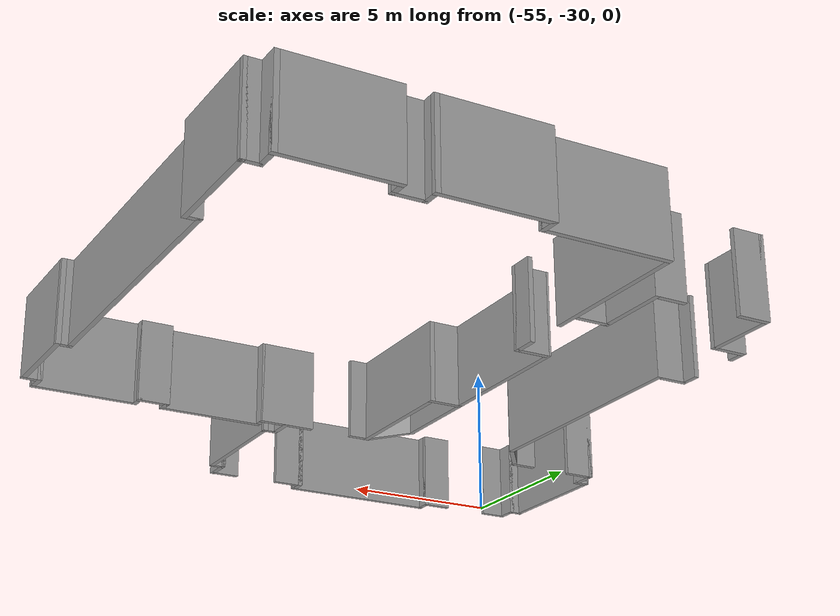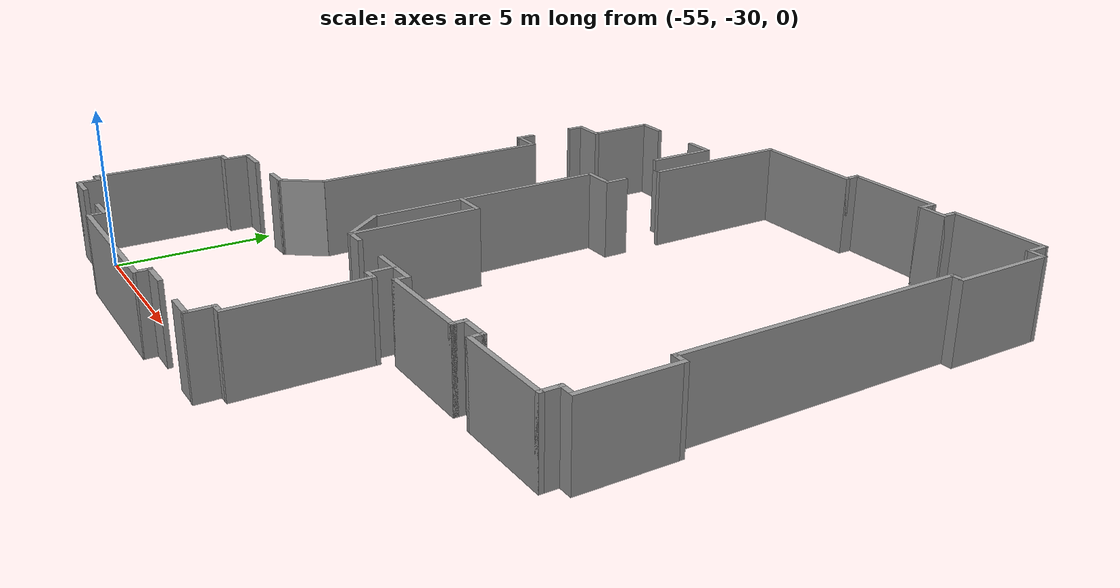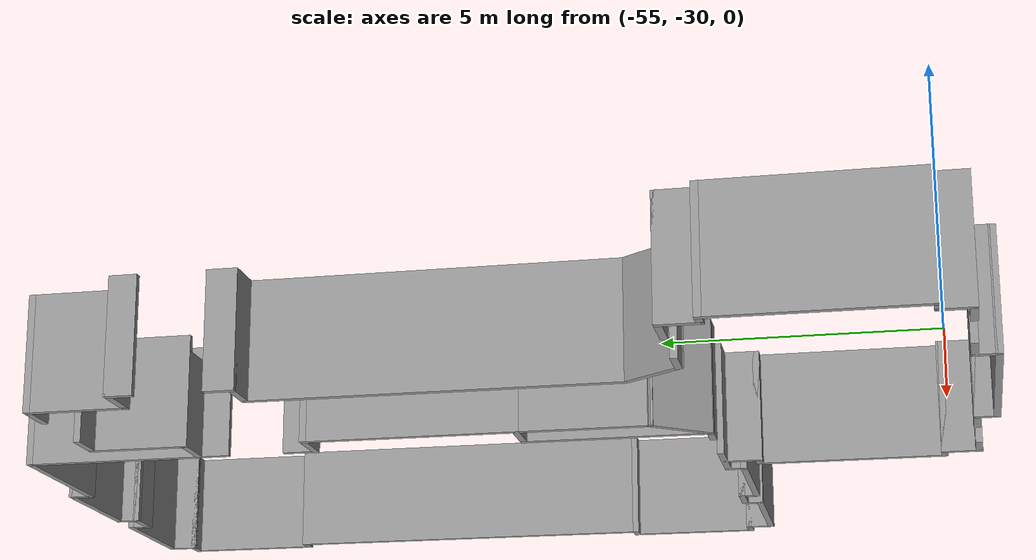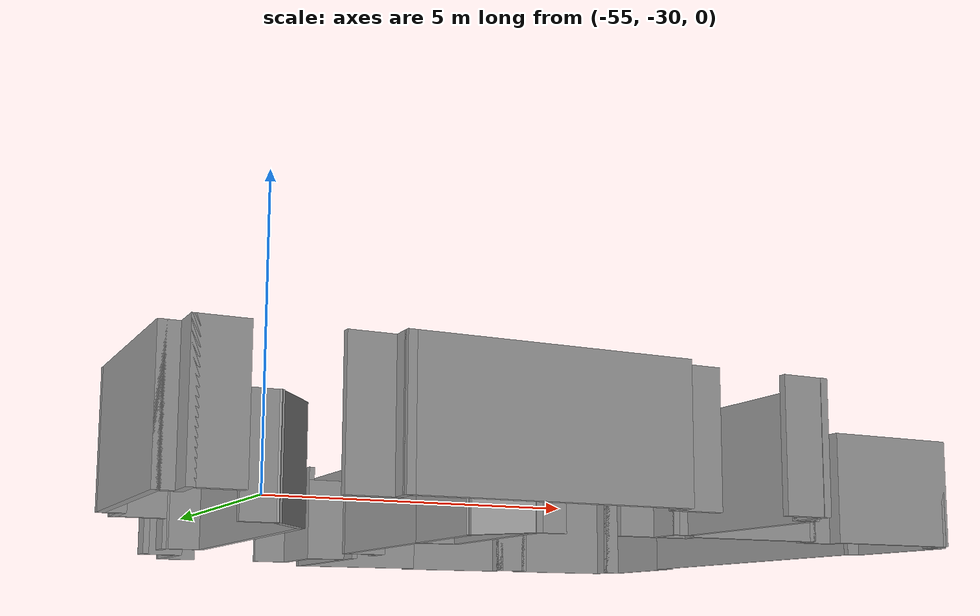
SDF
<?xml version='1.0'?>
<sdf version='1.7'>
  <model name='TD1'>
    <pose>-28.3145 -15.5307 0 0 -0 0</pose>
    <link name='Wall_109'>
      <collision name='Wall_109_Collision'>
        <geometry>
          <box>
            <size>3 0.15 2.5</size>
          </box>
        </geometry>
        <pose>0 0 1.25 0 -0 0</pose>
      </collision>
      <visual name='Wall_109_Visual'>
        <pose>0 0 1.25 0 -0 0</pose>
        <geometry>
          <box>
            <size>3 0.15 2.5</size>
          </box>
        </geometry>
        <material>
          <script>
            <uri>file://media/materials/scripts/gazebo.material</uri>
            <name>Gazebo/Grey</name>
          </script>
          <ambient>1 1 1 1</ambient>
        </material>
        <meta>
          <layer>0</layer>
        </meta>
      </visual>
      <pose>-20.3998 -6.95471 0 0 -0 -1.5708</pose>
    </link>
    <link name='Wall_11'>
      <collision name='Wall_11_Collision'>
        <geometry>
          <box>
            <size>1.75 0.15 2.5</size>
          </box>
        </geometry>
        <pose>0 0 1.25 0 -0 0</pose>
      </collision>
      <visual name='Wall_11_Visual'>
        <pose>0 0 1.25 0 -0 0</pose>
        <geometry>
          <box>
            <size>1.75 0.15 2.5</size>
          </box>
        </geometry>
        <material>
          <script>
            <uri>file://media/materials/scripts/gazebo.material</uri>
            <name>Gazebo/Grey</name>
          </script>
          <ambient>1 1 1 1</ambient>
        </material>
        <meta>
          <layer>0</layer>
        </meta>
      </visual>
      <pose>-16.6495 -9.53936 0 0 -0 -4.8e-05</pose>
    </link>
    <link name='Wall_112'>
      <collision name='Wall_112_Collision'>
        <geometry>
          <box>
            <size>1.57435 0.15 2.5</size>
          </box>
        </geometry>
        <pose>0 0 1.25 0 -0 0</pose>
      </collision>
      <visual name='Wall_112_Visual'>
        <pose>0 0 1.25 0 -0 0</pose>
        <geometry>
          <box>
            <size>1.57435 0.15 2.5</size>
          </box>
        </geometry>
        <material>
          <script>
            <uri>file://media/materials/scripts/gazebo.material</uri>
            <name>Gazebo/Grey</name>
          </script>
          <ambient>1 1 1 1</ambient>
        </material>
        <meta>
          <layer>0</layer>
        </meta>
      </visual>
      <pose>-19.9567 -8.93727 0 0 -0 -0.899319</pose>
    </link>
    <link name='Wall_115'>
      <collision name='Wall_115_Collision'>
        <geometry>
          <box>
            <size>0.812514 0.15 2.5</size>
          </box>
        </geometry>
        <pose>0 0 1.25 0 -0 0</pose>
      </collision>
      <visual name='Wall_115_Visual'>
        <pose>0 0 1.25 0 -0 0</pose>
        <geometry>
          <box>
            <size>0.812514 0.15 2.5</size>
          </box>
        </geometry>
        <material>
          <script>
            <uri>file://media/materials/scripts/gazebo.material</uri>
            <name>Gazebo/Grey</name>
          </script>
          <ambient>1 1 1 1</ambient>
        </material>
        <meta>
          <layer>0</layer>
        </meta>
      </visual>
      <pose>-25.2583 -9.55294 0 0 -0 0.008254</pose>
    </link>
    <link name='Wall_119'>
      <collision name='Wall_119_Collision'>
        <geometry>
          <box>
            <size>7.75 0.15 2.5</size>
          </box>
        </geometry>
        <pose>0 0 1.25 0 -0 0</pose>
      </collision>
      <visual name='Wall_119_Visual'>
        <pose>0 0 1.25 0 -0 0</pose>
        <geometry>
          <box>
            <size>7.75 0.15 2.5</size>
          </box>
        </geometry>
        <material>
          <script>
            <uri>file://media/materials/scripts/gazebo.material</uri>
            <name>Gazebo/Grey</name>
          </script>
          <ambient>1 1 1 1</ambient>
        </material>
        <meta>
          <layer>0</layer>
        </meta>
      </visual>
      <pose>-24.0875 -4.57705 0 0 -0 -1.5708</pose>
    </link>
    <link name='Wall_12'>
      <collision name='Wall_12_Collision'>
        <geometry>
          <box>
            <size>0.5 0.15 2.5</size>
          </box>
        </geometry>
        <pose>0 0 1.25 0 -0 0</pose>
      </collision>
      <visual name='Wall_12_Visual'>
        <pose>0 0 1.25 0 -0 0</pose>
        <geometry>
          <box>
            <size>0.5 0.15 2.5</size>
          </box>
        </geometry>
        <material>
          <script>
            <uri>file://media/materials/scripts/gazebo.material</uri>
            <name>Gazebo/Grey</name>
          </script>
          <ambient>1 1 1 1</ambient>
        </material>
        <meta>
          <layer>0</layer>
        </meta>
      </visual>
      <pose>-15.8494 -9.7144 0 0 -0 -1.5708</pose>
    </link>
    <link name='Wall_124'>
      <collision name='Wall_124_Collision'>
        <geometry>
          <box>
            <size>1.50767 0.15 2.5</size>
          </box>
        </geometry>
        <pose>0 0 1.25 0 -0 0</pose>
      </collision>
      <visual name='Wall_124_Visual'>
        <pose>0 0 1.25 0 -0 0</pose>
        <geometry>
          <box>
            <size>1.50767 0.15 2.5</size>
          </box>
        </geometry>
        <material>
          <script>
            <uri>file://media/materials/scripts/gazebo.material</uri>
            <name>Gazebo/Grey</name>
          </script>
          <ambient>1 1 1 1</ambient>
        </material>
        <meta>
          <layer>0</layer>
        </meta>
      </visual>
      <pose>-24.5197 -9.00714 0 0 -0 0.927295</pose>
    </link>
    <link name='Wall_128'>
      <collision name='Wall_128_Collision'>
        <geometry>
          <box>
            <size>1 0.15 2.5</size>
          </box>
        </geometry>
        <pose>0 0 1.25 0 -0 0</pose>
      </collision>
      <visual name='Wall_128_Visual'>
        <pose>0 0 1.25 0 -0 0</pose>
        <geometry>
          <box>
            <size>1 0.15 2.5</size>
          </box>
        </geometry>
        <material>
          <script>
            <uri>file://media/materials/scripts/gazebo.material</uri>
            <name>Gazebo/Grey</name>
          </script>
          <ambient>1 1 1 1</ambient>
        </material>
        <meta>
          <layer>0</layer>
        </meta>
      </visual>
      <pose>-27.4645 -9.55567 0 0 -0 3.14159</pose>
    </link>
    <link name='Wall_129'>
      <collision name='Wall_129_Collision'>
        <geometry>
          <box>
            <size>0.9 0.15 2.5</size>
          </box>
        </geometry>
        <pose>0 0 1.25 0 -0 0</pose>
      </collision>
      <visual name='Wall_129_Visual'>
        <pose>0 0 1.25 0 -0 0</pose>
        <geometry>
          <box>
            <size>0.9 0.15 2.5</size>
          </box>
        </geometry>
        <material>
          <script>
            <uri>file://media/materials/scripts/gazebo.material</uri>
            <name>Gazebo/Grey</name>
          </script>
          <ambient>1 1 1 1</ambient>
        </material>
        <meta>
          <layer>0</layer>
        </meta>
      </visual>
      <pose>-27.8895 -9.93067 0 0 -0 -1.5708</pose>
    </link>
    <link name='Wall_13'>
      <collision name='Wall_13_Collision'>
        <geometry>
          <box>
            <size>3.25 0.15 2.5</size>
          </box>
        </geometry>
        <pose>0 0 1.25 0 -0 0</pose>
      </collision>
      <visual name='Wall_13_Visual'>
        <pose>0 0 1.25 0 -0 0</pose>
        <geometry>
          <box>
            <size>3.25 0.15 2.5</size>
          </box>
        </geometry>
        <material>
          <script>
            <uri>file://media/materials/scripts/gazebo.material</uri>
            <name>Gazebo/Grey</name>
          </script>
          <ambient>1 1 1 1</ambient>
        </material>
        <meta>
          <layer>0</layer>
        </meta>
      </visual>
      <pose>-14.2994 -9.8894 0 0 -0 0</pose>
    </link>
    <link name='Wall_131'>
      <collision name='Wall_131_Collision'>
        <geometry>
          <box>
            <size>0.5 0.15 2.5</size>
          </box>
        </geometry>
        <pose>0 0 1.25 0 -0 0</pose>
      </collision>
      <visual name='Wall_131_Visual'>
        <pose>0 0 1.25 0 -0 0</pose>
        <geometry>
          <box>
            <size>0.5 0.15 2.5</size>
          </box>
        </geometry>
        <material>
          <script>
            <uri>file://media/materials/scripts/gazebo.material</uri>
            <name>Gazebo/Grey</name>
          </script>
          <ambient>1 1 1 1</ambient>
        </material>
        <meta>
          <layer>0</layer>
        </meta>
      </visual>
      <pose>-28.0645 -10.3057 0 0 -0 3.14159</pose>
    </link>
    <link name='Wall_133'>
      <collision name='Wall_133_Collision'>
        <geometry>
          <box>
            <size>4.25 0.15 2.5</size>
          </box>
        </geometry>
        <pose>0 0 1.25 0 -0 0</pose>
      </collision>
      <visual name='Wall_133_Visual'>
        <pose>0 0 1.25 0 -0 0</pose>
        <geometry>
          <box>
            <size>4.25 0.15 2.5</size>
          </box>
        </geometry>
        <material>
          <script>
            <uri>file://media/materials/scripts/gazebo.material</uri>
            <name>Gazebo/Grey</name>
          </script>
          <ambient>1 1 1 1</ambient>
        </material>
        <meta>
          <layer>0</layer>
        </meta>
      </visual>
      <pose>-28.2395 -12.3557 0 0 -0 -1.5708</pose>
    </link>
    <link name='Wall_134'>
      <collision name='Wall_134_Collision'>
        <geometry>
          <box>
            <size>0.5 0.15 2.5</size>
          </box>
        </geometry>
        <pose>0 0 1.25 0 -0 0</pose>
      </collision>
      <visual name='Wall_134_Visual'>
        <pose>0 0 1.25 0 -0 0</pose>
        <geometry>
          <box>
            <size>0.5 0.15 2.5</size>
          </box>
        </geometry>
        <material>
          <script>
            <uri>file://media/materials/scripts/gazebo.material</uri>
            <name>Gazebo/Grey</name>
          </script>
          <ambient>1 1 1 1</ambient>
        </material>
        <meta>
          <layer>0</layer>
        </meta>
      </visual>
      <pose>-28.0645 -14.4057 0 0 -0 0</pose>
    </link>
    <link name='Wall_135'>
      <collision name='Wall_135_Collision'>
        <geometry>
          <box>
            <size>0.75 0.15 2.5</size>
          </box>
        </geometry>
        <pose>0 0 1.25 0 -0 0</pose>
      </collision>
      <visual name='Wall_135_Visual'>
        <pose>0 0 1.25 0 -0 0</pose>
        <geometry>
          <box>
            <size>0.75 0.15 2.5</size>
          </box>
        </geometry>
        <material>
          <script>
            <uri>file://media/materials/scripts/gazebo.material</uri>
            <name>Gazebo/Grey</name>
          </script>
          <ambient>1 1 1 1</ambient>
        </material>
        <meta>
          <layer>0</layer>
        </meta>
      </visual>
      <pose>-27.8895 -14.7057 0 0 -0 -1.5708</pose>
    </link>
    <link name='Wall_136'>
      <collision name='Wall_136_Collision'>
        <geometry>
          <box>
            <size>0.9 0.15 2.5</size>
          </box>
        </geometry>
        <pose>0 0 1.25 0 -0 0</pose>
      </collision>
      <visual name='Wall_136_Visual'>
        <pose>0 0 1.25 0 -0 0</pose>
        <geometry>
          <box>
            <size>0.9 0.15 2.5</size>
          </box>
        </geometry>
        <material>
          <script>
            <uri>file://media/materials/scripts/gazebo.material</uri>
            <name>Gazebo/Grey</name>
          </script>
          <ambient>1 1 1 1</ambient>
        </material>
        <meta>
          <layer>0</layer>
        </meta>
      </visual>
      <pose>-27.5145 -15.0057 0 0 -0 0</pose>
    </link>
    <link name='Wall_14'>
      <collision name='Wall_14_Collision'>
        <geometry>
          <box>
            <size>0.5 0.15 2.5</size>
          </box>
        </geometry>
        <pose>0 0 1.25 0 -0 0</pose>
      </collision>
      <visual name='Wall_14_Visual'>
        <pose>0 0 1.25 0 -0 0</pose>
        <geometry>
          <box>
            <size>0.5 0.15 2.5</size>
          </box>
        </geometry>
        <material>
          <script>
            <uri>file://media/materials/scripts/gazebo.material</uri>
            <name>Gazebo/Grey</name>
          </script>
          <ambient>1 1 1 1</ambient>
        </material>
        <meta>
          <layer>0</layer>
        </meta>
      </visual>
      <pose>-12.7494 -9.7144 0 0 -0 1.5708</pose>
    </link>
    <link name='Wall_141'>
      <collision name='Wall_141_Collision'>
        <geometry>
          <box>
            <size>0.95 0.15 2.5</size>
          </box>
        </geometry>
        <pose>0 0 1.25 0 -0 0</pose>
      </collision>
      <visual name='Wall_141_Visual'>
        <pose>0 0 1.25 0 -0 0</pose>
        <geometry>
          <box>
            <size>0.95 0.15 2.5</size>
          </box>
        </geometry>
        <material>
          <script>
            <uri>file://media/materials/scripts/gazebo.material</uri>
            <name>Gazebo/Grey</name>
          </script>
          <ambient>1 1 1 1</ambient>
        </material>
        <meta>
          <layer>0</layer>
        </meta>
      </visual>
      <pose>-25.1395 -15.0057 0 0 -0 0</pose>
    </link>
    <link name='Wall_143'>
      <collision name='Wall_143_Collision'>
        <geometry>
          <box>
            <size>0.6 0.15 2.5</size>
          </box>
        </geometry>
        <pose>0 0 1.25 0 -0 0</pose>
      </collision>
      <visual name='Wall_143_Visual'>
        <pose>0 0 1.25 0 -0 0</pose>
        <geometry>
          <box>
            <size>0.6 0.15 2.5</size>
          </box>
        </geometry>
        <material>
          <script>
            <uri>file://media/materials/scripts/gazebo.material</uri>
            <name>Gazebo/Grey</name>
          </script>
          <ambient>1 1 1 1</ambient>
        </material>
        <meta>
          <layer>0</layer>
        </meta>
      </visual>
      <pose>-24.7395 -15.2307 0 0 -0 -1.5708</pose>
    </link>
    <link name='Wall_145'>
      <collision name='Wall_145_Collision'>
        <geometry>
          <box>
            <size>5.1 0.15 2.5</size>
          </box>
        </geometry>
        <pose>0 0 1.25 0 -0 0</pose>
      </collision>
      <visual name='Wall_145_Visual'>
        <pose>0 0 1.25 0 -0 0</pose>
        <geometry>
          <box>
            <size>5.1 0.15 2.5</size>
          </box>
        </geometry>
        <material>
          <script>
            <uri>file://media/materials/scripts/gazebo.material</uri>
            <name>Gazebo/Grey</name>
          </script>
          <ambient>1 1 1 1</ambient>
        </material>
        <meta>
          <layer>0</layer>
        </meta>
      </visual>
      <pose>-22.2645 -15.4555 0 0 -0 7.1e-05</pose>
    </link>
    <link name='Wall_147'>
      <collision name='Wall_147_Collision'>
        <geometry>
          <box>
            <size>0.55 0.15 2.5</size>
          </box>
        </geometry>
        <pose>0 0 1.25 0 -0 0</pose>
      </collision>
      <visual name='Wall_147_Visual'>
        <pose>0 0 1.25 0 -0 0</pose>
        <geometry>
          <box>
            <size>0.55 0.15 2.5</size>
          </box>
        </geometry>
        <material>
          <script>
            <uri>file://media/materials/scripts/gazebo.material</uri>
            <name>Gazebo/Grey</name>
          </script>
          <ambient>1 1 1 1</ambient>
        </material>
        <meta>
          <layer>0</layer>
        </meta>
      </visual>
      <pose>-19.7895 -15.2553 0 0 -0 1.5708</pose>
    </link>
    <link name='Wall_149'>
      <collision name='Wall_149_Collision'>
        <geometry>
          <box>
            <size>1 0.15 2.5</size>
          </box>
        </geometry>
        <pose>0 0 1.25 0 -0 0</pose>
      </collision>
      <visual name='Wall_149_Visual'>
        <pose>0 0 1.25 0 -0 0</pose>
        <geometry>
          <box>
            <size>1 0.15 2.5</size>
          </box>
        </geometry>
        <material>
          <script>
            <uri>file://media/materials/scripts/gazebo.material</uri>
            <name>Gazebo/Grey</name>
          </script>
          <ambient>1 1 1 1</ambient>
        </material>
        <meta>
          <layer>0</layer>
        </meta>
      </visual>
      <pose>-19.3645 -15.0553 0 0 -0 0</pose>
    </link>
    <link name='Wall_15'>
      <collision name='Wall_15_Collision'>
        <geometry>
          <box>
            <size>1 0.15 2.5</size>
          </box>
        </geometry>
        <pose>0 0 1.25 0 -0 0</pose>
      </collision>
      <visual name='Wall_15_Visual'>
        <pose>0 0 1.25 0 -0 0</pose>
        <geometry>
          <box>
            <size>1 0.15 2.5</size>
          </box>
        </geometry>
        <material>
          <script>
            <uri>file://media/materials/scripts/gazebo.material</uri>
            <name>Gazebo/Grey</name>
          </script>
          <ambient>1 1 1 1</ambient>
        </material>
        <meta>
          <layer>0</layer>
        </meta>
      </visual>
      <pose>-12.3244 -9.5394 0 0 -0 0</pose>
    </link>
    <link name='Wall_152'>
      <collision name='Wall_152_Collision'>
        <geometry>
          <box>
            <size>0.9 0.15 2.5</size>
          </box>
        </geometry>
        <pose>0 0 1.25 0 -0 0</pose>
      </collision>
      <visual name='Wall_152_Visual'>
        <pose>0 0 1.25 0 -0 0</pose>
        <geometry>
          <box>
            <size>0.9 0.15 2.5</size>
          </box>
        </geometry>
        <material>
          <script>
            <uri>file://media/materials/scripts/gazebo.material</uri>
            <name>Gazebo/Grey</name>
          </script>
          <ambient>1 1 1 1</ambient>
        </material>
        <meta>
          <layer>0</layer>
        </meta>
      </visual>
      <pose>-17.0537 -15.0933 0 0 -0 0</pose>
    </link>
    <link name='Wall_155'>
      <collision name='Wall_155_Collision'>
        <geometry>
          <box>
            <size>0.5 0.15 2.5</size>
          </box>
        </geometry>
        <pose>0 0 1.25 0 -0 0</pose>
      </collision>
      <visual name='Wall_155_Visual'>
        <pose>0 0 1.25 0 -0 0</pose>
        <geometry>
          <box>
            <size>0.5 0.15 2.5</size>
          </box>
        </geometry>
        <material>
          <script>
            <uri>file://media/materials/scripts/gazebo.material</uri>
            <name>Gazebo/Grey</name>
          </script>
          <ambient>1 1 1 1</ambient>
        </material>
        <meta>
          <layer>0</layer>
        </meta>
      </visual>
      <pose>-16.4645 -14.3553 0 0 -0 0</pose>
    </link>
    <link name='Wall_157'>
      <collision name='Wall_157_Collision'>
        <geometry>
          <box>
            <size>0.9 0.15 2.5</size>
          </box>
        </geometry>
        <pose>0 0 1.25 0 -0 0</pose>
      </collision>
      <visual name='Wall_157_Visual'>
        <pose>0 0 1.25 0 -0 0</pose>
        <geometry>
          <box>
            <size>0.9 0.15 2.5</size>
          </box>
        </geometry>
        <material>
          <script>
            <uri>file://media/materials/scripts/gazebo.material</uri>
            <name>Gazebo/Grey</name>
          </script>
          <ambient>1 1 1 1</ambient>
        </material>
        <meta>
          <layer>0</layer>
        </meta>
      </visual>
      <pose>-16.6395 -14.7303 0 0 -0 -1.5708</pose>
    </link>
    <link name='Wall_159'>
      <collision name='Wall_159_Collision'>
        <geometry>
          <box>
            <size>4.2 0.15 2.5</size>
          </box>
        </geometry>
        <pose>0 0 1.25 0 -0 0</pose>
      </collision>
      <visual name='Wall_159_Visual'>
        <pose>0 0 1.25 0 -0 0</pose>
        <geometry>
          <box>
            <size>4.2 0.15 2.5</size>
          </box>
        </geometry>
        <material>
          <script>
            <uri>file://media/materials/scripts/gazebo.material</uri>
            <name>Gazebo/Grey</name>
          </script>
          <ambient>1 1 1 1</ambient>
        </material>
        <meta>
          <layer>0</layer>
        </meta>
      </visual>
      <pose>-16.2895 -12.3303 0 0 -0 1.5708</pose>
    </link>
    <link name='Wall_16'>
      <collision name='Wall_16_Collision'>
        <geometry>
          <box>
            <size>0.5 0.15 2.5</size>
          </box>
        </geometry>
        <pose>0 0 1.25 0 -0 0</pose>
      </collision>
      <visual name='Wall_16_Visual'>
        <pose>0 0 1.25 0 -0 0</pose>
        <geometry>
          <box>
            <size>0.5 0.15 2.5</size>
          </box>
        </geometry>
        <material>
          <script>
            <uri>file://media/materials/scripts/gazebo.material</uri>
            <name>Gazebo/Grey</name>
          </script>
          <ambient>1 1 1 1</ambient>
        </material>
        <meta>
          <layer>0</layer>
        </meta>
      </visual>
      <pose>-11.8994 -9.7144 0 0 -0 -1.5708</pose>
    </link>
    <link name='Wall_161'>
      <collision name='Wall_161_Collision'>
        <geometry>
          <box>
            <size>0.5 0.15 2.5</size>
          </box>
        </geometry>
        <pose>0 0 1.25 0 -0 0</pose>
      </collision>
      <visual name='Wall_161_Visual'>
        <pose>0 0 1.25 0 -0 0</pose>
        <geometry>
          <box>
            <size>0.5 0.15 2.5</size>
          </box>
        </geometry>
        <material>
          <script>
            <uri>file://media/materials/scripts/gazebo.material</uri>
            <name>Gazebo/Grey</name>
          </script>
          <ambient>1 1 1 1</ambient>
        </material>
        <meta>
          <layer>0</layer>
        </meta>
      </visual>
      <pose>-16.4645 -10.3053 0 0 -0 3.14159</pose>
    </link>
    <link name='Wall_162'>
      <collision name='Wall_162_Collision'>
        <geometry>
          <box>
            <size>0.9 0.15 2.5</size>
          </box>
        </geometry>
        <pose>0 0 1.25 0 -0 0</pose>
      </collision>
      <visual name='Wall_162_Visual'>
        <pose>0 0 1.25 0 -0 0</pose>
        <geometry>
          <box>
            <size>0.9 0.15 2.5</size>
          </box>
        </geometry>
        <material>
          <script>
            <uri>file://media/materials/scripts/gazebo.material</uri>
            <name>Gazebo/Grey</name>
          </script>
          <ambient>1 1 1 1</ambient>
        </material>
        <meta>
          <layer>0</layer>
        </meta>
      </visual>
      <pose>-16.6395 -9.93032 0 0 -0 1.5708</pose>
    </link>
    <link name='Wall_17'>
      <collision name='Wall_17_Collision'>
        <geometry>
          <box>
            <size>3.25 0.15 2.5</size>
          </box>
        </geometry>
        <pose>0 0 1.25 0 -0 0</pose>
      </collision>
      <visual name='Wall_17_Visual'>
        <pose>0 0 1.25 0 -0 0</pose>
        <geometry>
          <box>
            <size>3.25 0.15 2.5</size>
          </box>
        </geometry>
        <material>
          <script>
            <uri>file://media/materials/scripts/gazebo.material</uri>
            <name>Gazebo/Grey</name>
          </script>
          <ambient>1 1 1 1</ambient>
        </material>
        <meta>
          <layer>0</layer>
        </meta>
      </visual>
      <pose>-10.3494 -9.8894 0 0 -0 0</pose>
    </link>
    <link name='Wall_18'>
      <collision name='Wall_18_Collision'>
        <geometry>
          <box>
            <size>0.7 0.15 2.5</size>
          </box>
        </geometry>
        <pose>0 0 1.25 0 -0 0</pose>
      </collision>
      <visual name='Wall_18_Visual'>
        <pose>0 0 1.25 0 -0 0</pose>
        <geometry>
          <box>
            <size>0.7 0.15 2.5</size>
          </box>
        </geometry>
        <material>
          <script>
            <uri>file://media/materials/scripts/gazebo.material</uri>
            <name>Gazebo/Grey</name>
          </script>
          <ambient>1 1 1 1</ambient>
        </material>
        <meta>
          <layer>0</layer>
        </meta>
      </visual>
      <pose>-8.79941 -9.6144 0 0 -0 1.5708</pose>
    </link>
    <link name='Wall_20'>
      <collision name='Wall_20_Collision'>
        <geometry>
          <box>
            <size>0.6 0.15 2.5</size>
          </box>
        </geometry>
        <pose>0 0 1.25 0 -0 0</pose>
      </collision>
      <visual name='Wall_20_Visual'>
        <pose>0 0 1.25 0 -0 0</pose>
        <geometry>
          <box>
            <size>0.6 0.15 2.5</size>
          </box>
        </geometry>
        <material>
          <script>
            <uri>file://media/materials/scripts/gazebo.material</uri>
            <name>Gazebo/Grey</name>
          </script>
          <ambient>1 1 1 1</ambient>
        </material>
        <meta>
          <layer>0</layer>
        </meta>
      </visual>
      <pose>-8.57441 -9.3394 0 0 -0 0</pose>
    </link>
    <link name='Wall_23'>
      <collision name='Wall_23_Collision'>
        <geometry>
          <box>
            <size>3.1 0.15 2.5</size>
          </box>
        </geometry>
        <pose>0 0 1.25 0 -0 0</pose>
      </collision>
      <visual name='Wall_23_Visual'>
        <pose>0 0 1.25 0 -0 0</pose>
        <geometry>
          <box>
            <size>3.1 0.15 2.5</size>
          </box>
        </geometry>
        <material>
          <script>
            <uri>file://media/materials/scripts/gazebo.material</uri>
            <name>Gazebo/Grey</name>
          </script>
          <ambient>1 1 1 1</ambient>
        </material>
        <meta>
          <layer>0</layer>
        </meta>
      </visual>
      <pose>-8.34941 -7.8644 0 0 -0 1.5708</pose>
    </link>
    <link name='Wall_26'>
      <collision name='Wall_26_Collision'>
        <geometry>
          <box>
            <size>0.5 0.15 2.5</size>
          </box>
        </geometry>
        <pose>0 0 1.25 0 -0 0</pose>
      </collision>
      <visual name='Wall_26_Visual'>
        <pose>0 0 1.25 0 -0 0</pose>
        <geometry>
          <box>
            <size>0.5 0.15 2.5</size>
          </box>
        </geometry>
        <material>
          <script>
            <uri>file://media/materials/scripts/gazebo.material</uri>
            <name>Gazebo/Grey</name>
          </script>
          <ambient>1 1 1 1</ambient>
        </material>
        <meta>
          <layer>0</layer>
        </meta>
      </visual>
      <pose>-8.52441 -6.3894 0 0 -0 3.14159</pose>
    </link>
    <link name='Wall_30'>
      <collision name='Wall_30_Collision'>
        <geometry>
          <box>
            <size>9.05 0.15 2.5</size>
          </box>
        </geometry>
        <pose>0 0 1.25 0 -0 0</pose>
      </collision>
      <visual name='Wall_30_Visual'>
        <pose>0 0 1.25 0 -0 0</pose>
        <geometry>
          <box>
            <size>9.05 0.15 2.5</size>
          </box>
        </geometry>
        <material>
          <script>
            <uri>file://media/materials/scripts/gazebo.material</uri>
            <name>Gazebo/Grey</name>
          </script>
          <ambient>1 1 1 1</ambient>
        </material>
        <meta>
          <layer>0</layer>
        </meta>
      </visual>
      <pose>-8.69945 -1.93936 0 0 -0 1.57081</pose>
    </link>
    <link name='Wall_32'>
      <collision name='Wall_32_Collision'>
        <geometry>
          <box>
            <size>0.5 0.15 2.5</size>
          </box>
        </geometry>
        <pose>0 0 1.25 0 -0 0</pose>
      </collision>
      <visual name='Wall_32_Visual'>
        <pose>0 0 1.25 0 -0 0</pose>
        <geometry>
          <box>
            <size>0.5 0.15 2.5</size>
          </box>
        </geometry>
        <material>
          <script>
            <uri>file://media/materials/scripts/gazebo.material</uri>
            <name>Gazebo/Grey</name>
          </script>
          <ambient>1 1 1 1</ambient>
        </material>
        <meta>
          <layer>0</layer>
        </meta>
      </visual>
      <pose>-8.5245 2.51068 0 0 -0 0</pose>
    </link>
    <link name='Wall_34'>
      <collision name='Wall_34_Collision'>
        <geometry>
          <box>
            <size>3.25 0.15 2.5</size>
          </box>
        </geometry>
        <pose>0 0 1.25 0 -0 0</pose>
      </collision>
      <visual name='Wall_34_Visual'>
        <pose>0 0 1.25 0 -0 0</pose>
        <geometry>
          <box>
            <size>3.25 0.15 2.5</size>
          </box>
        </geometry>
        <material>
          <script>
            <uri>file://media/materials/scripts/gazebo.material</uri>
            <name>Gazebo/Grey</name>
          </script>
          <ambient>1 1 1 1</ambient>
        </material>
        <meta>
          <layer>0</layer>
        </meta>
      </visual>
      <pose>-8.3495 4.06068 0 0 -0 1.5708</pose>
    </link>
    <link name='Wall_35'>
      <collision name='Wall_35_Collision'>
        <geometry>
          <box>
            <size>0.6 0.15 2.5</size>
          </box>
        </geometry>
        <pose>0 0 1.25 0 -0 0</pose>
      </collision>
      <visual name='Wall_35_Visual'>
        <pose>0 0 1.25 0 -0 0</pose>
        <geometry>
          <box>
            <size>0.6 0.15 2.5</size>
          </box>
        </geometry>
        <material>
          <script>
            <uri>file://media/materials/scripts/gazebo.material</uri>
            <name>Gazebo/Grey</name>
          </script>
          <ambient>1 1 1 1</ambient>
        </material>
        <meta>
          <layer>0</layer>
        </meta>
      </visual>
      <pose>-8.5745 5.61068 0 0 -0 3.14159</pose>
    </link>
    <link name='Wall_37'>
      <collision name='Wall_37_Collision'>
        <geometry>
          <box>
            <size>0.75 0.15 2.5</size>
          </box>
        </geometry>
        <pose>0 0 1.25 0 -0 0</pose>
      </collision>
      <visual name='Wall_37_Visual'>
        <pose>0 0 1.25 0 -0 0</pose>
        <geometry>
          <box>
            <size>0.75 0.15 2.5</size>
          </box>
        </geometry>
        <material>
          <script>
            <uri>file://media/materials/scripts/gazebo.material</uri>
            <name>Gazebo/Grey</name>
          </script>
          <ambient>1 1 1 1</ambient>
        </material>
        <meta>
          <layer>0</layer>
        </meta>
      </visual>
      <pose>-8.7995 5.91068 0 0 -0 1.5708</pose>
    </link>
    <link name='Wall_38'>
      <collision name='Wall_38_Collision'>
        <geometry>
          <box>
            <size>3.25 0.15 2.5</size>
          </box>
        </geometry>
        <pose>0 0 1.25 0 -0 0</pose>
      </collision>
      <visual name='Wall_38_Visual'>
        <pose>0 0 1.25 0 -0 0</pose>
        <geometry>
          <box>
            <size>3.25 0.15 2.5</size>
          </box>
        </geometry>
        <material>
          <script>
            <uri>file://media/materials/scripts/gazebo.material</uri>
            <name>Gazebo/Grey</name>
          </script>
          <ambient>1 1 1 1</ambient>
        </material>
        <meta>
          <layer>0</layer>
        </meta>
      </visual>
      <pose>-10.3495 6.21068 0 0 -0 3.14159</pose>
    </link>
    <link name='Wall_39'>
      <collision name='Wall_39_Collision'>
        <geometry>
          <box>
            <size>0.6 0.15 2.5</size>
          </box>
        </geometry>
        <pose>0 0 1.25 0 -0 0</pose>
      </collision>
      <visual name='Wall_39_Visual'>
        <pose>0 0 1.25 0 -0 0</pose>
        <geometry>
          <box>
            <size>0.6 0.15 2.5</size>
          </box>
        </geometry>
        <material>
          <script>
            <uri>file://media/materials/scripts/gazebo.material</uri>
            <name>Gazebo/Grey</name>
          </script>
          <ambient>1 1 1 1</ambient>
        </material>
        <meta>
          <layer>0</layer>
        </meta>
      </visual>
      <pose>-11.8995 5.98568 0 0 -0 -1.5708</pose>
    </link>
    <link name='Wall_42'>
      <collision name='Wall_42_Collision'>
        <geometry>
          <box>
            <size>1 0.15 2.5</size>
          </box>
        </geometry>
        <pose>0 0 1.25 0 -0 0</pose>
      </collision>
      <visual name='Wall_42_Visual'>
        <pose>0 0 1.25 0 -0 0</pose>
        <geometry>
          <box>
            <size>1 0.15 2.5</size>
          </box>
        </geometry>
        <material>
          <script>
            <uri>file://media/materials/scripts/gazebo.material</uri>
            <name>Gazebo/Grey</name>
          </script>
          <ambient>1 1 1 1</ambient>
        </material>
        <meta>
          <layer>0</layer>
        </meta>
      </visual>
      <pose>-12.3245 5.76068 0 0 -0 3.14159</pose>
    </link>
    <link name='Wall_43'>
      <collision name='Wall_43_Collision'>
        <geometry>
          <box>
            <size>0.6 0.15 2.5</size>
          </box>
        </geometry>
        <pose>0 0 1.25 0 -0 0</pose>
      </collision>
      <visual name='Wall_43_Visual'>
        <pose>0 0 1.25 0 -0 0</pose>
        <geometry>
          <box>
            <size>0.6 0.15 2.5</size>
          </box>
        </geometry>
        <material>
          <script>
            <uri>file://media/materials/scripts/gazebo.material</uri>
            <name>Gazebo/Grey</name>
          </script>
          <ambient>1 1 1 1</ambient>
        </material>
        <meta>
          <layer>0</layer>
        </meta>
      </visual>
      <pose>-12.7495 5.98568 0 0 -0 1.5708</pose>
    </link>
    <link name='Wall_45'>
      <collision name='Wall_45_Collision'>
        <geometry>
          <box>
            <size>3.25 0.15 2.5</size>
          </box>
        </geometry>
        <pose>0 0 1.25 0 -0 0</pose>
      </collision>
      <visual name='Wall_45_Visual'>
        <pose>0 0 1.25 0 -0 0</pose>
        <geometry>
          <box>
            <size>3.25 0.15 2.5</size>
          </box>
        </geometry>
        <material>
          <script>
            <uri>file://media/materials/scripts/gazebo.material</uri>
            <name>Gazebo/Grey</name>
          </script>
          <ambient>1 1 1 1</ambient>
        </material>
        <meta>
          <layer>0</layer>
        </meta>
      </visual>
      <pose>-14.2995 6.21068 0 0 -0 3.14159</pose>
    </link>
    <link name='Wall_46'>
      <collision name='Wall_46_Collision'>
        <geometry>
          <box>
            <size>0.6 0.15 2.5</size>
          </box>
        </geometry>
        <pose>0 0 1.25 0 -0 0</pose>
      </collision>
      <visual name='Wall_46_Visual'>
        <pose>0 0 1.25 0 -0 0</pose>
        <geometry>
          <box>
            <size>0.6 0.15 2.5</size>
          </box>
        </geometry>
        <material>
          <script>
            <uri>file://media/materials/scripts/gazebo.material</uri>
            <name>Gazebo/Grey</name>
          </script>
          <ambient>1 1 1 1</ambient>
        </material>
        <meta>
          <layer>0</layer>
        </meta>
      </visual>
      <pose>-15.8495 5.98568 0 0 -0 -1.5708</pose>
    </link>
    <link name='Wall_48'>
      <collision name='Wall_48_Collision'>
        <geometry>
          <box>
            <size>3.75 0.15 2.5</size>
          </box>
        </geometry>
        <pose>0 0 1.25 0 -0 0</pose>
      </collision>
      <visual name='Wall_48_Visual'>
        <pose>0 0 1.25 0 -0 0</pose>
        <geometry>
          <box>
            <size>3.75 0.15 2.5</size>
          </box>
        </geometry>
        <material>
          <script>
            <uri>file://media/materials/scripts/gazebo.material</uri>
            <name>Gazebo/Grey</name>
          </script>
          <ambient>1 1 1 1</ambient>
        </material>
        <meta>
          <layer>0</layer>
        </meta>
      </visual>
      <pose>-17.6495 5.76068 0 0 -0 3.14159</pose>
    </link>
    <link name='Wall_50'>
      <collision name='Wall_50_Collision'>
        <geometry>
          <box>
            <size>4.75 0.15 2.5</size>
          </box>
        </geometry>
        <pose>0 0 1.25 0 -0 0</pose>
      </collision>
      <visual name='Wall_50_Visual'>
        <pose>0 0 1.25 0 -0 0</pose>
        <geometry>
          <box>
            <size>4.75 0.15 2.5</size>
          </box>
        </geometry>
        <material>
          <script>
            <uri>file://media/materials/scripts/gazebo.material</uri>
            <name>Gazebo/Grey</name>
          </script>
          <ambient>1 1 1 1</ambient>
        </material>
        <meta>
          <layer>0</layer>
        </meta>
      </visual>
      <pose>-19.4495 3.46068 0 0 -0 -1.5708</pose>
    </link>
    <link name='Wall_52'>
      <collision name='Wall_52_Collision'>
        <geometry>
          <box>
            <size>0.8 0.15 2.5</size>
          </box>
        </geometry>
        <pose>0 0 1.25 0 -0 0</pose>
      </collision>
      <visual name='Wall_52_Visual'>
        <pose>0 0 1.25 0 -0 0</pose>
        <geometry>
          <box>
            <size>0.8 0.15 2.5</size>
          </box>
        </geometry>
        <material>
          <script>
            <uri>file://media/materials/scripts/gazebo.material</uri>
            <name>Gazebo/Grey</name>
          </script>
          <ambient>1 1 1 1</ambient>
        </material>
        <meta>
          <layer>0</layer>
        </meta>
      </visual>
      <pose>-19.4498 -0.554709 0 0 -0 -1.5708</pose>
    </link>
    <link name='Wall_54'>
      <collision name='Wall_54_Collision'>
        <geometry>
          <box>
            <size>1.1 0.15 2.5</size>
          </box>
        </geometry>
        <pose>0 0 1.25 0 -0 0</pose>
      </collision>
      <visual name='Wall_54_Visual'>
        <pose>0 0 1.25 0 -0 0</pose>
        <geometry>
          <box>
            <size>1.1 0.15 2.5</size>
          </box>
        </geometry>
        <material>
          <script>
            <uri>file://media/materials/scripts/gazebo.material</uri>
            <name>Gazebo/Grey</name>
          </script>
          <ambient>1 1 1 1</ambient>
        </material>
        <meta>
          <layer>0</layer>
        </meta>
      </visual>
      <pose>-19.9248 -0.87971 0 0 -0 3.14159</pose>
    </link>
    <link name='Wall_57'>
      <collision name='Wall_57_Collision'>
        <geometry>
          <box>
            <size>4.8 0.15 2.5</size>
          </box>
        </geometry>
        <pose>0 0 1.25 0 -0 0</pose>
      </collision>
      <visual name='Wall_57_Visual'>
        <pose>0 0 1.25 0 -0 0</pose>
        <geometry>
          <box>
            <size>4.8 0.15 2.5</size>
          </box>
        </geometry>
        <material>
          <script>
            <uri>file://media/materials/scripts/gazebo.material</uri>
            <name>Gazebo/Grey</name>
          </script>
          <ambient>1 1 1 1</ambient>
        </material>
        <meta>
          <layer>0</layer>
        </meta>
      </visual>
      <pose>-20.3998 -3.20471 0 0 -0 -1.5708</pose>
    </link>
    <link name='Wall_62'>
      <collision name='Wall_62_Collision'>
        <geometry>
          <box>
            <size>1.1 0.15 2.5</size>
          </box>
        </geometry>
        <pose>0 0 1.25 0 -0 0</pose>
      </collision>
      <visual name='Wall_62_Visual'>
        <pose>0 0 1.25 0 -0 0</pose>
        <geometry>
          <box>
            <size>1.1 0.15 2.5</size>
          </box>
        </geometry>
        <material>
          <script>
            <uri>file://media/materials/scripts/gazebo.material</uri>
            <name>Gazebo/Grey</name>
          </script>
          <ambient>1 1 1 1</ambient>
        </material>
        <meta>
          <layer>0</layer>
        </meta>
      </visual>
      <pose>-19.9248 -5.52971 0 0 -0 0</pose>
    </link>
    <link name='Wall_67'>
      <collision name='Wall_67_Collision'>
        <geometry>
          <box>
            <size>0.7 0.15 2.5</size>
          </box>
        </geometry>
        <pose>0 0 1.25 0 -0 0</pose>
      </collision>
      <visual name='Wall_67_Visual'>
        <pose>0 0 1.25 0 -0 0</pose>
        <geometry>
          <box>
            <size>0.7 0.15 2.5</size>
          </box>
        </geometry>
        <material>
          <script>
            <uri>file://media/materials/scripts/gazebo.material</uri>
            <name>Gazebo/Grey</name>
          </script>
          <ambient>1 1 1 1</ambient>
        </material>
        <meta>
          <layer>0</layer>
        </meta>
      </visual>
      <pose>-19.1745 -9.53932 0 0 -0 3.14159</pose>
    </link>
    <link name='Wall_69'>
      <collision name='Wall_69_Collision'>
        <geometry>
          <box>
            <size>4.15992 0.15 2.5</size>
          </box>
        </geometry>
        <pose>0 0 1.25 0 -0 0</pose>
      </collision>
      <visual name='Wall_69_Visual'>
        <pose>0 0 1.25 0 -0 0</pose>
        <geometry>
          <box>
            <size>4.15992 0.15 2.5</size>
          </box>
        </geometry>
        <material>
          <script>
            <uri>file://media/materials/scripts/gazebo.material</uri>
            <name>Gazebo/Grey</name>
          </script>
          <ambient>1 1 1 1</ambient>
        </material>
        <meta>
          <layer>0</layer>
        </meta>
      </visual>
      <pose>-19.4496 -7.53452 0 0 -0 -1.57073</pose>
    </link>
    <link name='Wall_76'>
      <collision name='Wall_76_Collision'>
        <geometry>
          <box>
            <size>1 0.15 2.5</size>
          </box>
        </geometry>
        <pose>0 0 1.25 0 -0 0</pose>
      </collision>
      <visual name='Wall_76_Visual'>
        <pose>0 0 1.25 0 -0 0</pose>
        <geometry>
          <box>
            <size>1 0.15 2.5</size>
          </box>
        </geometry>
        <material>
          <script>
            <uri>file://media/materials/scripts/gazebo.material</uri>
            <name>Gazebo/Grey</name>
          </script>
          <ambient>1 1 1 1</ambient>
        </material>
        <meta>
          <layer>0</layer>
        </meta>
      </visual>
      <pose>-20.9125 3.87295 0 0 -0 0</pose>
    </link>
    <link name='Wall_77'>
      <collision name='Wall_77_Collision'>
        <geometry>
          <box>
            <size>2.25 0.15 2.5</size>
          </box>
        </geometry>
        <pose>0 0 1.25 0 -0 0</pose>
      </collision>
      <visual name='Wall_77_Visual'>
        <pose>0 0 1.25 0 -0 0</pose>
        <geometry>
          <box>
            <size>2.25 0.15 2.5</size>
          </box>
        </geometry>
        <material>
          <script>
            <uri>file://media/materials/scripts/gazebo.material</uri>
            <name>Gazebo/Grey</name>
          </script>
          <ambient>1 1 1 1</ambient>
        </material>
        <meta>
          <layer>0</layer>
        </meta>
      </visual>
      <pose>-20.4875 2.82282 0 0 -0 -1.57081</pose>
    </link>
    <link name='Wall_78'>
      <collision name='Wall_78_Collision'>
        <geometry>
          <box>
            <size>1.1 0.15 2.15</size>
          </box>
        </geometry>
        <pose>0 0 1.075 0 -0 0</pose>
      </collision>
      <visual name='Wall_78_Visual'>
        <pose>0 0 1.075 0 -0 0</pose>
        <geometry>
          <box>
            <size>1.1 0.15 2.15</size>
          </box>
        </geometry>
        <material>
          <script>
            <uri>file://media/materials/scripts/gazebo.material</uri>
            <name>Gazebo/Grey</name>
          </script>
          <ambient>1 1 1 1</ambient>
        </material>
        <meta>
          <layer>0</layer>
        </meta>
      </visual>
      <pose>-20.0125 1.77268 0 0 -0 0</pose>
    </link>
    <link name='Wall_81'>
      <collision name='Wall_81_Collision'>
        <geometry>
          <box>
            <size>1 0.15 2.5</size>
          </box>
        </geometry>
        <pose>0 0 1.25 0 -0 0</pose>
      </collision>
      <visual name='Wall_81_Visual'>
        <pose>0 0 1.25 0 -0 0</pose>
        <geometry>
          <box>
            <size>1 0.15 2.5</size>
          </box>
        </geometry>
        <material>
          <script>
            <uri>file://media/materials/scripts/gazebo.material</uri>
            <name>Gazebo/Grey</name>
          </script>
          <ambient>1 1 1 1</ambient>
        </material>
        <meta>
          <layer>0</layer>
        </meta>
      </visual>
      <pose>-23.6125 3.87295 0 0 -0 3.14159</pose>
    </link>
    <link name='Wall_82'>
      <collision name='Wall_82_Collision'>
        <geometry>
          <box>
            <size>2.25 0.15 2.5</size>
          </box>
        </geometry>
        <pose>0 0 1.25 0 -0 0</pose>
      </collision>
      <visual name='Wall_82_Visual'>
        <pose>0 0 1.25 0 -0 0</pose>
        <geometry>
          <box>
            <size>2.25 0.15 2.5</size>
          </box>
        </geometry>
        <material>
          <script>
            <uri>file://media/materials/scripts/gazebo.material</uri>
            <name>Gazebo/Grey</name>
          </script>
          <ambient>1 1 1 1</ambient>
        </material>
        <meta>
          <layer>0</layer>
        </meta>
      </visual>
      <pose>-24.0375 2.82295 0 0 -0 -1.5708</pose>
    </link>
    <link name='Wall_83'>
      <collision name='Wall_83_Collision'>
        <geometry>
          <box>
            <size>1.1 0.15 2.5</size>
          </box>
        </geometry>
        <pose>0 0 1.25 0 -0 0</pose>
      </collision>
      <visual name='Wall_83_Visual'>
        <pose>0 0 1.25 0 -0 0</pose>
        <geometry>
          <box>
            <size>1.1 0.15 2.5</size>
          </box>
        </geometry>
        <material>
          <script>
            <uri>file://media/materials/scripts/gazebo.material</uri>
            <name>Gazebo/Grey</name>
          </script>
          <ambient>1 1 1 1</ambient>
        </material>
        <meta>
          <layer>0</layer>
        </meta>
      </visual>
      <pose>-24.5125 1.77295 0 0 -0 3.14159</pose>
    </link>
    <link name='Wall_85'>
      <collision name='Wall_85_Collision'>
        <geometry>
          <box>
            <size>0.6 0.15 2.5</size>
          </box>
        </geometry>
        <pose>0 0 1.25 0 -0 0</pose>
      </collision>
      <visual name='Wall_85_Visual'>
        <pose>0 0 1.25 0 -0 0</pose>
        <geometry>
          <box>
            <size>0.6 0.15 2.5</size>
          </box>
        </geometry>
        <material>
          <script>
            <uri>file://media/materials/scripts/gazebo.material</uri>
            <name>Gazebo/Grey</name>
          </script>
          <ambient>1 1 1 1</ambient>
        </material>
        <meta>
          <layer>0</layer>
        </meta>
      </visual>
      <pose>-24.9875 1.54795 0 0 -0 -1.5708</pose>
    </link>
    <link name='Wall_94'>
      <collision name='Wall_94_Collision'>
        <geometry>
          <box>
            <size>0.65 0.15 2.5</size>
          </box>
        </geometry>
        <pose>0 0 1.25 0 -0 0</pose>
      </collision>
      <visual name='Wall_94_Visual'>
        <pose>0 0 1.25 0 -0 0</pose>
        <geometry>
          <box>
            <size>0.65 0.15 2.5</size>
          </box>
        </geometry>
        <material>
          <script>
            <uri>file://media/materials/scripts/gazebo.material</uri>
            <name>Gazebo/Grey</name>
          </script>
          <ambient>1 1 1 1</ambient>
        </material>
        <meta>
          <layer>0</layer>
        </meta>
      </visual>
      <pose>-24.9875 -0.527045 0 0 -0 -1.5708</pose>
    </link>
    <link name='Wall_96'>
      <collision name='Wall_96_Collision'>
        <geometry>
          <box>
            <size>1.05 0.15 2.5</size>
          </box>
        </geometry>
        <pose>0 0 1.25 0 -0 0</pose>
      </collision>
      <visual name='Wall_96_Visual'>
        <pose>0 0 1.25 0 -0 0</pose>
        <geometry>
          <box>
            <size>1.05 0.15 2.5</size>
          </box>
        </geometry>
        <material>
          <script>
            <uri>file://media/materials/scripts/gazebo.material</uri>
            <name>Gazebo/Grey</name>
          </script>
          <ambient>1 1 1 1</ambient>
        </material>
        <meta>
          <layer>0</layer>
        </meta>
      </visual>
      <pose>-24.5375 -0.777045 0 0 -0 0</pose>
    </link>
    <static>1</static>
  </model>
</sdf>
